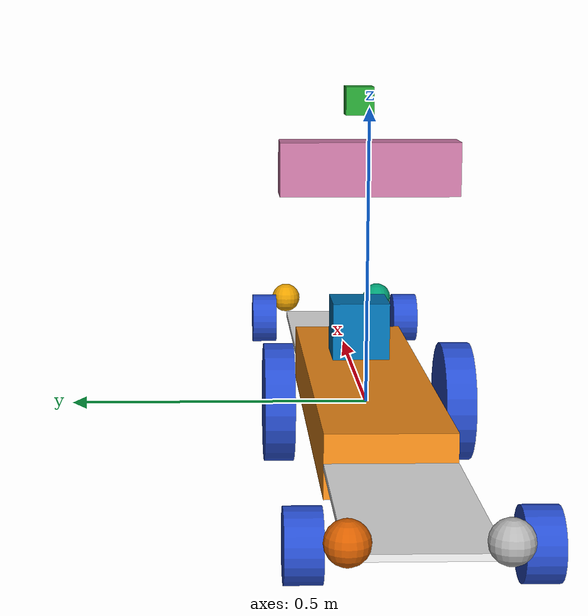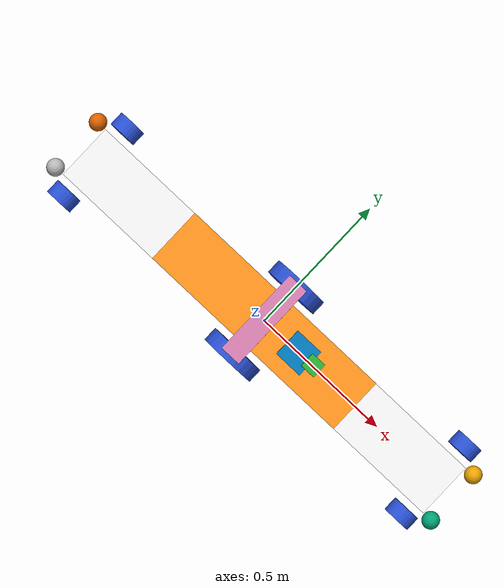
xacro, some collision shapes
<?xml version='1.0'?>

<robot name="mybot" xmlns:xacro="http://www.ros.org/wiki/xacro">
<xacro:arg name="kinect_enabled" default="true" />
  <xacro:property name="cameraSize" value="0.05"/>
  <xacro:property name="cameraMass" value="0.1"/>
<xacro:property name="M_PI" value="3.14159"/>
<property name="M_PI" value="3.14159"/>

  <xacro:include filename="$(find mybot_description)/urdf/mybot.gazebo" />
  <xacro:include filename="$(find mybot_description)/urdf/materials.xacro" />
  <xacro:include filename="$(find mybot_description)/urdf/robot/defaults.xacro" />
  <xacro:include filename="$(find mybot_description)/urdf/robot/chasis.xacro" />
  <xacro:include filename="$(find mybot_description)/urdf/robot/wheel.xacro" />
  <xacro:include filename="$(find mybot_description)/urdf/robot/sensor.xacro" />
  <!--xacro:include filename="$(find mybot_description)/urdf/robot/arm.xacro" /-->
  <xacro:include filename="$(find mybot_description)/urdf/robot/arm_wide.xacro" />
  <xacro:include filename="$(find mybot_description)/urdf/robot/imu.xacro" />

</robot>

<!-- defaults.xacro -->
<robot name="mybot" xmlns:xacro="http://www.ros.org/wiki/xacro">
	<xacro:macro name="default_inertial" params="mass">
	<inertial>
		<origin xyz="0 0 0" rpy="0 1.5707 1.5707"/>
		<mass value="${mass}" />
		<inertia ixx="0.1" ixy="0.0" ixz="0.0"
			 iyy="0.1" iyz="0.0" izz="0.1" />
	</inertial>
	</xacro:macro>
</robot>

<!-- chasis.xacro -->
<robot name="mybot" xmlns:xacro="http://www.ros.org/wiki/xacro">

<!-- chasis -->
<xacro:property name="chasisX" value="0.8"/>
<xacro:property name="chasisY" value="0.2"/>
<xacro:property name="chasisZ" value="0.1"/>
<!-- caster -->
<xacro:property name="casterX" value="0.35"/>
<xacro:property name="casterY" value="0"/>
<xacro:property name="casterZ" value="-0.05"/>

<link name='chassis'>
    <pose>0 0 0.1 0 0 0</pose>

    <inertial>
      <mass value="10.0"/>
      <origin xyz="0.0 0 0.1" rpy=" 0 0 0"/>
      <inertia
          ixx="0.5" ixy="0" ixz="0"
          iyy="1.0" iyz="0"
          izz="0.1"
      />
    </inertial>

    <collision name='collision'>
      <geometry>
        <box size="${chasisX} ${chasisY} ${chasisZ}"/>
      </geometry>
    </collision>

    <visual name='chassis_visual'>
      <origin xyz="0 0 0" rpy=" 0 0 0"/>
      <geometry>
        <box size="${chasisX} ${chasisY} ${chasisZ}"/>
      </geometry>
    </visual>

    <collision name='caster1_collision'>
      <origin xyz="${casterX} ${casterY} ${casterZ}" rpy=" 0 0 0"/>
      <geometry>
        <sphere radius="0.05"/>
      </geometry>
      <surface>
        <friction>
          <ode>
            <mu>0</mu>
            <mu2>0</mu2>
            <slip1>1.0</slip1>
            <slip2>1.0</slip2>
          </ode>
        </friction>
      </surface>
    </collision>
    <visual name='caster1_visual'>
	<origin xyz="${casterX} ${casterY} ${casterZ}" rpy=" 0 0 0"/>
      <geometry>
        <sphere radius="0.05"/>
      </geometry>
    </visual>

    <collision name='caster2_collision'>
      <origin xyz="-${casterX} ${casterY} ${casterZ}" rpy=" 0 0 0"/>
      <geometry>
        <sphere radius="0.05"/>
      </geometry>
      <surface>
        <friction>
          <ode>
            <mu>0</mu>
            <mu2>0</mu2>
            <slip1>1.0</slip1>
            <slip2>1.0</slip2>
          </ode>
        </friction>
      </surface>
    </collision>
    <visual name='caster2_visual'>
	<origin xyz="-${casterX} ${casterY} ${casterZ}" rpy=" 0 0 0"/>
      <geometry>
        <sphere radius="0.05"/>
      </geometry>
    </visual>
  </link>
</robot>

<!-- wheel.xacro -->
<robot name="mybot" xmlns:xacro="http://www.ros.org/wiki/xacro">

	<xacro:property name="wheel_radius" value="0.1"/>
	<xacro:property name="wheel_length" value="0.05"/>

	<xacro:macro name="chasis_wheel" params="name wheel_origin_angle *shape">
	<!--xacro:property name="wheel_origin_angle" value="0 1.5707 1.5707"/-->
	<link name="${name}_wheel">
	<visual>
		<origin xyz="0 0 0" rpy="${wheel_origin_angle}"/>
		<geometry>
			<xacro:insert_block name="shape" />
		</geometry>
		<material name="blue"/>
	</visual>
	<collision>
		<origin xyz="0 0 0" rpy="${wheel_origin_angle}"/>
		<geometry>
			<xacro:insert_block name="shape" />
		</geometry>
	</collision>
	<xacro:default_inertial mass="5"/>

	</link>
	</xacro:macro>

	<xacro:macro name="sphere_wheel" params="name">
	<link name="${name}_wheel">
	<collision>
      	  <origin xyz="0 0 0" rpy=" 0 0 0"/>
      	  <geometry>
            <sphere radius="0.03"/>
      	  </geometry>
      	  <surface>
            <friction>
              <ode>
                <mu>0.1</mu>
                <mu2>.1</mu2>
                <slip1>0.99</slip1>
                <slip2>0.99</slip2>
              </ode>
             </friction>
     	  </surface>
    	</collision>
    	<visual>
	    <origin xyz="0 0 0" rpy=" 0 0 0"/>
          <geometry>
            <sphere radius="0.03"/>
          </geometry>
        </visual>
	<xacro:default_inertial mass="1"/>

	</link>
	</xacro:macro>

	<xacro:chasis_wheel name="left" wheel_origin_angle="0 1.5707 1.5707">
		<cylinder radius="${wheel_radius}" length="${wheel_length}"/>
	</xacro:chasis_wheel>
	<xacro:chasis_wheel name="right" wheel_origin_angle="0 1.5707 1.5707">
		<cylinder radius="${wheel_radius}" length="${wheel_length}"/>
	</xacro:chasis_wheel>

	<joint type="continuous" name="left_wheel_hinge">
	<origin xyz="0 0.15 0" rpy="0 0 0"/>
	<!--origin xyz="0.1 0.13 0" rpy="0 1.5707 1.5707"/-->
	<child link="left_wheel"/>
	<parent link="chassis"/>
	<axis xyz="0 1 0" rpy="0 0 0"/>
	<limit effort="100" velocity="100"/>
	<joint_properties damping="0.0" friction="0.0"/>
	</joint>

	<joint type="continuous" name="right_wheel_hinge">
	<origin xyz="0 -0.15 0" rpy="0 0 0"/>
	<!--origin xyz="0.1 -0.13 0" rpy="0 1.5707 1.5707"/-->
	<child link="right_wheel"/>
	<parent link="chassis"/>
	<axis xyz="0 1 0" rpy="0 0 0"/>
	<limit effort="100" velocity="100"/>
	<joint_properties damping="0.0" friction="0.0"/>
	</joint>
</robot>

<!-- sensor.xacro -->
<robot name="mybot" xmlns:xacro="http://www.ros.org/wiki/xacro">
<link name="camera">
    <collision>
      <origin xyz="0 0 0" rpy="0 0 0"/>
      <geometry>
        <box size="${cameraSize} ${cameraSize} ${cameraSize}"/>
      </geometry>
    </collision>

    <visual>
      <origin xyz="0 0 0" rpy="0 0 0"/>
      <geometry>
        <box size="${cameraSize} ${cameraSize} ${cameraSize}"/>
      </geometry>
      <material name="green"/>
    </visual>

    <inertial>
      <mass value="${cameraMass}" />
      <origin xyz="0 0 0" rpy="0 0 0"/>
      <box_inertia m="${cameraMass}" x="${cameraSize}" y="${cameraSize}" z="${cameraSize}" />
      <inertia ixx="1e-6" ixy="0" ixz="0" iyy="1e-6" iyz="0" izz="1e-6" />
    </inertial>
  </link>
  <joint name="camera_joint" type="fixed">
    <axis xyz="0 1 0" />
    <origin xyz=".2 0 0.5" rpy="0 0 0"/>
    <parent link="chassis"/>
    <child link="camera"/>
  </joint>
  <joint name="hokuyo_joint" type="fixed">
    <axis xyz="0 1 0" />
    <origin xyz=".15 0 .1" rpy="0 0 0"/>
    <parent link="chassis"/>
    <child link="hokuyo"/>
  </joint>

  <!-- Hokuyo Laser -->
  <link name="hokuyo">
    <collision>
      <origin xyz="0 0 0" rpy="0 0 0"/>
      <geometry>
    <box size="0.1 0.1 0.1"/>
      </geometry>
    </collision>

    <visual>
      <origin xyz="0 0 0" rpy="0 0 0"/>
      <geometry>
        <mesh filename="package://mybot_description/meshes/hokuyo.dae"/>
      </geometry>
    </visual>

    <inertial>
      <mass value="1e-5" />
      <origin xyz="0 1 0" rpy="0 0 0"/>
      <inertia ixx="1e-6" ixy="0" ixz="0" iyy="1e-6" iyz="0" izz="1e-6" />
    </inertial>
  </link>

    <!-- Create kinect reference frame -->
    <!-- Add mesh for kinect -->
<xacro:macro name="kinect_camera" params="prefix:=camera">
    <!-- Create kinect reference frame -->
    <!-- Add mesh for kinect -->
    <link name="${prefix}_link">
      <origin xyz="0 0 0" rpy="0 0 0"/>
      <visual>
        <origin xyz="0 0 0" rpy="0 0 0"/>
        <geometry>
	<box size="0.07 0.3 0.09"/>
        </geometry>
      </visual>
      <collision>
        <geometry>
          <box size="0.07 0.3 0.09"/>
        </geometry>
      </collision>
    </link>
</xacro:macro>
<xacro:macro name="kinect_camera_gazebo" params="prefix">

  <joint name="${prefix}_optical_joint" type="fixed">
    <origin xyz="0 0 0" rpy="-1.5708 0 -1.5708"/>
    <parent link="${prefix}_link"/>
    <child link="${prefix}_frame_optical"/>
  </joint>

  <link name="${prefix}_frame_optical"/>

  <gazebo reference="${prefix}_link">
    <sensor type="depth" name="${prefix}">
      <always_on>true</always_on>
      <update_rate>20.0</update_rate>
      <camera>
        <horizontal_fov>${60.0*M_PI/180.0}</horizontal_fov>
        <image>
          <format>R8G8B8</format>
          <width>640</width>
          <height>480</height>
        </image>
        <clip>
          <near>0.05</near>
          <far>8.0</far>
        </clip>
      </camera>
      <plugin name="kinect_${prefix}_controller" filename="libgazebo_ros_openni_kinect.so">
        <cameraName>${prefix}</cameraName>
        <alwaysOn>true</alwaysOn>
        <updateRate>10</updateRate>
        <imageTopicName>rgb/image_raw</imageTopicName>
        <depthImageTopicName>depth/image_raw</depthImageTopicName>
        <pointCloudTopicName>depth/points</pointCloudTopicName>
        <cameraInfoTopicName>rgb/camera_info</cameraInfoTopicName>
        <depthImageCameraInfoTopicName>depth/camera_info</depthImageCameraInfoTopicName>
        <frameName>${prefix}_frame_optical</frameName>
        <baseline>0.1</baseline>
        <distortion_k1>0.0</distortion_k1>
        <distortion_k2>0.0</distortion_k2>
        <distortion_k3>0.0</distortion_k3>
        <distortion_t1>0.0</distortion_t1>
        <distortion_t2>0.0</distortion_t2>
        <pointCloudCutoff>0.4</pointCloudCutoff>
      </plugin>
    </sensor>
  </gazebo>
</xacro:macro>

<xacro:if value="$(arg kinect_enabled)">
      	<xacro:kinect_camera_gazebo prefix="camera"/>
	<xacro:kinect_camera prefix="camera"/>
      <joint name="kinect_frame_joint" type="fixed">
        <origin xyz="0 0 .4" rpy="0 0 0" />

	<parent link="chassis"/>
        <child link="camera_link"/>
      </joint>
</xacro:if>-->

</robot>

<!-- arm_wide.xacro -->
<robot name="mybot" xmlns:xacro="http://www.ros.org/wiki/xacro">

<xacro:macro name="leg" params="name name2 reflect_front reflect_side wheel_origin_angle join_rotation_axis join_rotation_axis2 " >

	<xacro:property name="leg_dimensions" value=".4 .05 .01"/>
	<!-- pie -->
	<xacro:property name="joint_origin_X" value="0.4"/>
	<xacro:property name="joint_origin_Y" value="0.0"/>
	<xacro:property name="joint_origin_Z" value="0"/>
	<xacro:property name="offset_meccanum_X" value="0.03"/>
	<xacro:property name="offset_meccanum_Y" value="0.0"/>
	<xacro:property name="offset_meccanum_Z" value="0.03"/>
	<xacro:property name="leg_dimension_X" value="0.4"/>
	<xacro:property name="leg_dimension_Y" value="0.2"/>
	<xacro:property name="leg_dimension_Z" value="0.01"/>
	<xacro:property name="wheel_track_radius" value="0.05"/>
	<xacro:property name="wheel_track_length" value="0.05"/>
	<link name="${name}_leg">
	<visual>
		<origin xyz="${(reflect_front*leg_dimension_X)/2} 0 0" rpy="0 0 0"/>
		<geometry>
			 <box size="${leg_dimension_X} ${leg_dimension_Y} ${leg_dimension_Z}"/>
		</geometry>
		<material name="white"/>
	</visual>
	<collision>
		<origin xyz="${(reflect_front*leg_dimension_X)/2} 0 0" rpy="0 0 0"/>
		<geometry>
			<box size="${leg_dimension_X} ${leg_dimension_Y} ${leg_dimension_Z}"/>
		</geometry>
	</collision>
	<inertial>
		<origin xyz="${(reflect_front*leg_dimension_X)/2} 0 0" rpy="0 0 0"/>
		<mass value="5" />
		<inertia ixx="0.1" ixy="0.0" ixz="0.0"
			 iyy="0.1" iyz="0.0" izz="0.1" />
	</inertial>
	</link>
        <joint name="base_to_${name}_leg" type="continuous">
            <parent link="chassis"/>
            <child link="${name}_leg"/>
	    <origin xyz="${reflect_front*joint_origin_X} ${reflect_side*joint_origin_Y} ${joint_origin_Z}" rpy="0 0 0"/>
	    <axis xyz="0 1 0" />
	    <limit effort="100" velocity="100"/>
	    <joint_properties damping="0.0" friction="0.0"/>
        </joint>
	<xacro:sphere_wheel name="${name}">
	</xacro:sphere_wheel>
        <joint name="wheel_to_${name}_leg" type="continuous">
            <parent link="${name}_leg"/>
            <child link="${name}_wheel"/>
	    <origin xyz="${reflect_front*(joint_origin_X+offset_meccanum_X)} ${reflect_side*leg_dimension_Y/2} ${offset_meccanum_X}" rpy="0 0 0"/>
	    <axis xyz="${join_rotation_axis}" />
	    <limit effort="100" velocity="100"/>
	    <joint_properties damping="0.0" friction="0.0"/>
        </joint>
    <transmission name="${name}_trans">
      <type>transmission_interface/SimpleTransmission</type>
      <joint name="base_to_${name}_leg">
        <hardwareInterface>EffortJointInterface</hardwareInterface>
      </joint>
      <actuator name="${name}Motor">
        <hardwareInterface>EffortJointInterface</hardwareInterface>
        <mechanicalReduction>10</mechanicalReduction>
      </actuator>
    </transmission>
    <transmission name="${name}_trans_leg">
      <type>transmission_interface/SimpleTransmission</type>
      <joint name="wheel_to_${name}_leg">
        <hardwareInterface>EffortJointInterface</hardwareInterface>
      </joint>
      <actuator name="${name}Motor_leg">
        <hardwareInterface>EffortJointInterface</hardwareInterface>
        <mechanicalReduction>10</mechanicalReduction>
      </actuator>
    </transmission>

	<xacro:chasis_wheel name="${name}_track" wheel_origin_angle="0 1.5707 1.5707">
		<cylinder radius="${wheel_track_radius}" length="${wheel_track_length}"/>
	</xacro:chasis_wheel>

	<joint type="continuous" name="${name}_track_joint">
	<origin xyz="${reflect_front*joint_origin_X+reflect_front*(-wheel_track_radius-0.00)} ${reflect_side*leg_dimension_Y/2+wheel_track_length} 0" rpy="0 0 0"/>
	<child link="${name}_track_wheel"/>
	<parent link="${name}_leg"/>
	<axis xyz="0 1 0" rpy="0 0 0"/>
	<limit effort="100" velocity="100"/>
	<joint_properties damping="0.0" friction="0.0"/>
	</joint>

    <transmission name="${name}_track_trans">
      <type>transmission_interface/SimpleTransmission</type>
      <joint name="${name}_track_joint">
        <hardwareInterface>EffortJointInterface</hardwareInterface>
      </joint>
      <actuator name="${name}_track_Motor">
        <hardwareInterface>EffortJointInterface</hardwareInterface>
        <mechanicalReduction>10</mechanicalReduction>
      </actuator>
    </transmission>

<xacro:sphere_wheel name="${name2}">
	</xacro:sphere_wheel>
<joint name="wheel_to_${name2}_leg" type="continuous">
            <parent link="${name}_leg"/>
            <child link="${name2}_wheel"/>
	    <origin xyz="${reflect_front*(joint_origin_X+offset_meccanum_X)} ${-reflect_side*leg_dimension_Y/2} ${offset_meccanum_X}" rpy="0 0 0"/>
	    <axis xyz="${join_rotation_axis2}" />
	    <limit effort="100" velocity="100"/>
	    <joint_properties damping="0.0" friction="0.0"/>
        </joint>
    <transmission name="${name2}_trans">
      <type>transmission_interface/SimpleTransmission</type>
      <joint name="base_to_${name}_leg">
        <hardwareInterface>EffortJointInterface</hardwareInterface>
      </joint>
      <actuator name="${name2}Motor">
        <hardwareInterface>EffortJointInterface</hardwareInterface>
        <mechanicalReduction>10</mechanicalReduction>
      </actuator>
    </transmission>
    <transmission name="${name2}_trans_leg">
      <type>transmission_interface/SimpleTransmission</type>
      <joint name="wheel_to_${name2}_leg">
        <hardwareInterface>EffortJointInterface</hardwareInterface>
      </joint>
      <actuator name="${name2}Motor_leg">
        <hardwareInterface>EffortJointInterface</hardwareInterface>
        <mechanicalReduction>10</mechanicalReduction>
      </actuator>
    </transmission>

	<xacro:chasis_wheel name="${name2}_track" wheel_origin_angle="0 1.5707 1.5707">
		<cylinder radius="${wheel_track_radius}" length="${wheel_track_length}"/>
	</xacro:chasis_wheel>

	<joint type="continuous" name="${name2}_track_joint">
	<origin xyz="${reflect_front*joint_origin_X+reflect_front*(-wheel_track_radius-0.00)} ${-reflect_side*leg_dimension_Y/2-wheel_track_length} 0" rpy="0 0 0"/>
	<child link="${name2}_track_wheel"/>
	<parent link="${name}_leg"/>
	<axis xyz="0 1 0" rpy="0 0 0"/>
	<limit effort="100" velocity="100"/>
	<joint_properties damping="0.0" friction="0.0"/>
	</joint>

    <transmission name="${name2}_track_trans">
      <type>transmission_interface/SimpleTransmission</type>
      <joint name="${name2}_track_joint">
        <hardwareInterface>EffortJointInterface</hardwareInterface>
      </joint>
      <actuator name="${name2}_track_Motor">
        <hardwareInterface>EffortJointInterface</hardwareInterface>
        <mechanicalReduction>10</mechanicalReduction>
      </actuator>
    </transmission>

	</xacro:macro>
	<xacro:leg name="left_front" name2="right_front" reflect_front="1" reflect_side="1" wheel_origin_angle="0 1.5707 -0.785398" join_rotation_axis="-1 1 0" join_rotation_axis2="1 1 0"/>
	<!--xacro:leg name="right_front" reflect_front="1" reflect_side="-1" wheel_origin_angle="0 1.5707 0.785398" join_rotation_axis="1 1 0" /-->
	<xacro:leg name="left_back" name2="right_back" reflect_front="-1" reflect_side="1" wheel_origin_angle="0 1.5707 0.785398" join_rotation_axis="1 1 0" join_rotation_axis2="-1 1 0" />
	<!--xacro:leg name="right_back" reflect_front="-1" reflect_side="-1" wheel_origin_angle="0 1.5707 -0.785398" join_rotation_axis2="-1 1 0" /-->

</robot>
